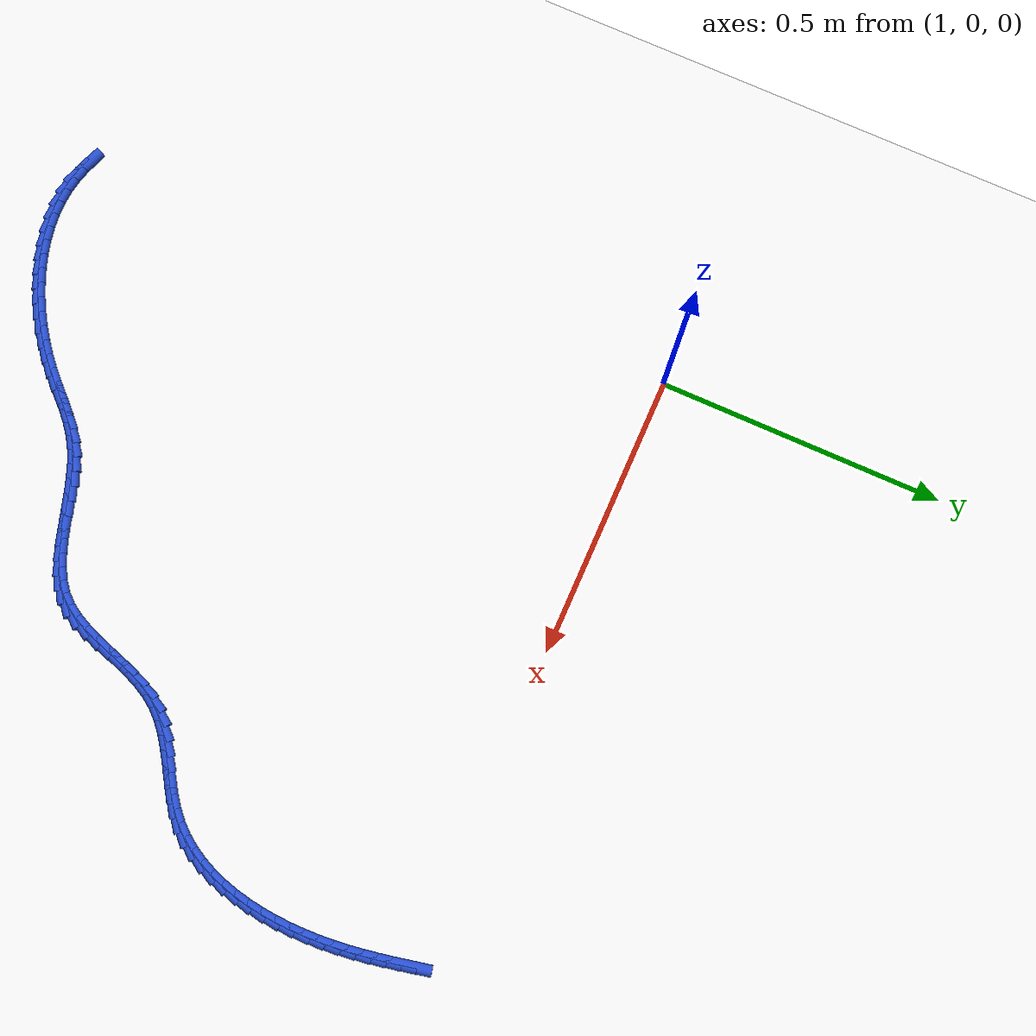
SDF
<sdf version="1.6">
 <world name="default">
  <model name="ground_plane">
   <static>1</static>
   <link name="link">
    <collision name="collision">
     <geometry><plane><normal>0 0 1</normal><size>100 100</size></plane></geometry>
     <surface><friction><ode><mu>100</mu><mu2>50</mu2></ode></friction></surface>
    </collision>
    <visual name="visual">
     <cast_shadows>0</cast_shadows>
     <geometry><plane><normal>0 0 1</normal><size>100 100</size></plane></geometry>
     <material>
      <script><uri>file://media/materials/scripts/gazebo.material</uri><name>Gazebo/WhiteGlow</name></script>
     </material>
    </visual>
   </link>
  </model>
  <model name="line">
   <link name="link_135">
    <pose>2.0529234820076043 -0.0016150680205293515 0.01 0 1.57 -1.3673246584797178</pose>
    <collision name="collision">
     <geometry><cylinder><radius>0.01</radius><length>0.08</length></cylinder></geometry>
    </collision>
    <visual name="visual">
     <material>
      <script><name>Gazebo/Blue</name><uri>file://media/materials/scripts/gazebo.material</uri></script>
     </material>
     <geometry><cylinder><radius>0.01</radius><length>0.08</length></cylinder></geometry>
    </visual>
   </link>
   <link name="link_136">
    <pose>2.0578505331956283 -0.025494895264284473 0.01 0 1.57 -1.3809384411356815</pose>
    <collision name="collision">
     <geometry><cylinder><radius>0.01</radius><length>0.08</length></cylinder></geometry>
    </collision>
    <visual name="visual">
     <material>
      <script><name>Gazebo/Blue</name><uri>file://media/materials/scripts/gazebo.material</uri></script>
     </material>
     <geometry><cylinder><radius>0.01</radius><length>0.08</length></cylinder></geometry>
    </visual>
   </link>
   <link name="link_137">
    <pose>2.0624840304668357 -0.04960603485799999 0.01 0 1.57 -1.4005227668651647</pose>
    <collision name="collision">
     <geometry><cylinder><radius>0.01</radius><length>0.08</length></cylinder></geometry>
    </collision>
    <visual name="visual">
     <material>
      <script><name>Gazebo/Blue</name><uri>file://media/materials/scripts/gazebo.material</uri></script>
     </material>
     <geometry><cylinder><radius>0.01</radius><length>0.08</length></cylinder></geometry>
    </visual>
   </link>
   <link name="link_138">
    <pose>2.0666794723685036 -0.07400686988727408 0.01 0 1.57 -1.4258386888961452</pose>
    <collision name="collision">
     <geometry><cylinder><radius>0.01</radius><length>0.08</length></cylinder></geometry>
    </collision>
    <visual name="visual">
     <material>
      <script><name>Gazebo/Blue</name><uri>file://media/materials/scripts/gazebo.material</uri></script>
     </material>
     <geometry><cylinder><radius>0.01</radius><length>0.08</length></cylinder></geometry>
    </visual>
   </link>
   <link name="link_139">
    <pose>2.0702923574479097 -0.09875578343770189 0.01 0 1.57 -1.456575569134146</pose>
    <collision name="collision">
     <geometry><cylinder><radius>0.01</radius><length>0.08</length></cylinder></geometry>
    </collision>
    <visual name="visual">
     <material>
      <script><name>Gazebo/Blue</name><uri>file://media/materials/scripts/gazebo.material</uri></script>
     </material>
     <geometry><cylinder><radius>0.01</radius><length>0.08</length></cylinder></geometry>
    </visual>
   </link>
   <link name="link_140">
    <pose>2.0731781842523316 -0.1239111585948809 0.01 0 1.57 -1.4921914561104308</pose>
    <collision name="collision">
     <geometry><cylinder><radius>0.01</radius><length>0.08</length></cylinder></geometry>
    </collision>
    <visual name="visual">
     <material>
      <script><name>Gazebo/Blue</name><uri>file://media/materials/scripts/gazebo.material</uri></script>
     </material>
     <geometry><cylinder><radius>0.01</radius><length>0.08</length></cylinder></geometry>
    </visual>
   </link>
   <link name="link_141">
    <pose>2.0751952232248523 -0.14951877042962924 0.01 0 1.57 -1.5308759582454987</pose>
    <collision name="collision">
     <geometry><cylinder><radius>0.01</radius><length>0.08</length></cylinder></geometry>
    </collision>
    <visual name="visual">
     <material>
      <script><name>Gazebo/Blue</name><uri>file://media/materials/scripts/gazebo.material</uri></script>
     </material>
     <geometry><cylinder><radius>0.01</radius><length>0.08</length></cylinder></geometry>
    </visual>
   </link>
   <link name="link_142">
    <pose>2.076232361082001 -0.17548513537710902 0.01 0 1.57 1.5694629504028557</pose>
    <collision name="collision">
     <geometry><cylinder><radius>0.01</radius><length>0.08</length></cylinder></geometry>
    </collision>
    <visual name="visual">
     <material>
      <script><name>Gazebo/Blue</name><uri>file://media/materials/scripts/gazebo.material</uri></script>
     </material>
     <geometry><cylinder><radius>0.01</radius><length>0.08</length></cylinder></geometry>
    </visual>
   </link>
   <link name="link_143">
    <pose>2.0761974997442048 -0.20163027889715962 0.01 0 1.57 1.52497716524298</pose>
    <collision name="collision">
     <geometry><cylinder><radius>0.01</radius><length>0.08</length></cylinder></geometry>
    </collision>
    <visual name="visual">
     <material>
      <script><name>Gazebo/Blue</name><uri>file://media/materials/scripts/gazebo.material</uri></script>
     </material>
     <geometry><cylinder><radius>0.01</radius><length>0.08</length></cylinder></geometry>
    </visual>
   </link>
   <link name="link_144">
    <pose>2.0749988265175134 -0.22777292836830074 0.01 0 1.57 1.476530948751982</pose>
    <collision name="collision">
     <geometry><cylinder><radius>0.01</radius><length>0.08</length></cylinder></geometry>
    </collision>
    <visual name="visual">
     <material>
      <script><name>Gazebo/Blue</name><uri>file://media/materials/scripts/gazebo.material</uri></script>
     </material>
     <geometry><cylinder><radius>0.01</radius><length>0.08</length></cylinder></geometry>
    </visual>
   </link>
   <link name="link_145">
    <pose>2.0725445287079762 -0.25373181116905547 0.01 0 1.57 1.423333579404905</pose>
    <collision name="collision">
     <geometry><cylinder><radius>0.01</radius><length>0.08</length></cylinder></geometry>
    </collision>
    <visual name="visual">
     <material>
      <script><name>Gazebo/Blue</name><uri>file://media/materials/scripts/gazebo.material</uri></script>
     </material>
     <geometry><cylinder><radius>0.01</radius><length>0.08</length></cylinder></geometry>
    </visual>
   </link>
   <link name="link_146">
    <pose>2.068742793621643 -0.27932565467794374 0.01 0 1.57 1.3645306307414187</pose>
    <collision name="collision">
     <geometry><cylinder><radius>0.01</radius><length>0.08</length></cylinder></geometry>
    </collision>
    <visual name="visual">
     <material>
      <script><name>Gazebo/Blue</name><uri>file://media/materials/scripts/gazebo.material</uri></script>
     </material>
     <geometry><cylinder><radius>0.01</radius><length>0.08</length></cylinder></geometry>
    </visual>
   </link>
   <link name="link_147">
    <pose>2.0635018085645633 -0.3043731862734885 0.01 0 1.57 1.2992194690371932</pose>
    <collision name="collision">
     <geometry><cylinder><radius>0.01</radius><length>0.08</length></cylinder></geometry>
    </collision>
    <visual name="visual">
     <material>
      <script><name>Gazebo/Blue</name><uri>file://media/materials/scripts/gazebo.material</uri></script>
     </material>
     <geometry><cylinder><radius>0.01</radius><length>0.08</length></cylinder></geometry>
    </visual>
   </link>
   <link name="link_148">
    <pose>2.0567297608427864 -0.32869313333420974 0.01 0 1.57 1.22649179376259</pose>
    <collision name="collision">
     <geometry><cylinder><radius>0.01</radius><length>0.08</length></cylinder></geometry>
    </collision>
    <visual name="visual">
     <material>
      <script><name>Gazebo/Blue</name><uri>file://media/materials/scripts/gazebo.material</uri></script>
     </material>
     <geometry><cylinder><radius>0.01</radius><length>0.08</length></cylinder></geometry>
    </visual>
   </link>
   <link name="link_149">
    <pose>2.0483348377623622 -0.35210422323863033 0.01 0 1.57 1.1455167119182321</pose>
    <collision name="collision">
     <geometry><cylinder><radius>0.01</radius><length>0.08</length></cylinder></geometry>
    </collision>
    <visual name="visual">
     <material>
      <script><name>Gazebo/Blue</name><uri>file://media/materials/scripts/gazebo.material</uri></script>
     </material>
     <geometry><cylinder><radius>0.01</radius><length>0.08</length></cylinder></geometry>
    </visual>
   </link>
   <link name="link_150">
    <pose>2.038225226629341 -0.3744251833652703 0.01 0 1.57 1.0556778934952047</pose>
    <collision name="collision">
     <geometry><cylinder><radius>0.01</radius><length>0.08</length></cylinder></geometry>
    </collision>
    <visual name="visual">
     <material>
      <script><name>Gazebo/Blue</name><uri>file://media/materials/scripts/gazebo.material</uri></script>
     </material>
     <geometry><cylinder><radius>0.01</radius><length>0.08</length></cylinder></geometry>
    </visual>
   </link>
   <link name="link_151">
    <pose>2.0263091147497705 -0.39547474109265174 0.01 0 1.57 0.9567694726958241</pose>
    <collision name="collision">
     <geometry><cylinder><radius>0.01</radius><length>0.08</length></cylinder></geometry>
    </collision>
    <visual name="visual">
     <material>
      <script><name>Gazebo/Blue</name><uri>file://media/materials/scripts/gazebo.material</uri></script>
     </material>
     <geometry><cylinder><radius>0.01</radius><length>0.08</length></cylinder></geometry>
    </visual>
   </link>
   <link name="link_152">
    <pose>2.012494689429702 -0.415071623799297 0.01 0 1.57 0.8492303155483246</pose>
    <collision name="collision">
     <geometry><cylinder><radius>0.01</radius><length>0.08</length></cylinder></geometry>
    </collision>
    <visual name="visual">
     <material>
      <script><name>Gazebo/Blue</name><uri>file://media/materials/scripts/gazebo.material</uri></script>
     </material>
     <geometry><cylinder><radius>0.01</radius><length>0.08</length></cylinder></geometry>
    </visual>
   </link>
   <link name="link_153">
    <pose>1.9966901379751836 -0.4330345588637259 0.01 0 1.57 0.7361043992434556</pose>
    <collision name="collision">
     <geometry><cylinder><radius>0.01</radius><length>0.08</length></cylinder></geometry>
    </collision>
    <visual name="visual">
     <material>
      <script><name>Gazebo/Blue</name><uri>file://media/materials/scripts/gazebo.material</uri></script>
     </material>
     <geometry><cylinder><radius>0.01</radius><length>0.08</length></cylinder></geometry>
    </visual>
   </link>
   <link name="link_154">
    <pose>1.9788331723716428 -0.44921245769234913 0.01 0 1.57 0.6428761321074841</pose>
    <collision name="collision">
     <geometry><cylinder><radius>0.01</radius><length>0.08</length></cylinder></geometry>
    </collision>
    <visual name="visual">
     <material>
      <script><name>Gazebo/Blue</name><uri>file://media/materials/scripts/gazebo.material</uri></script>
     </material>
     <geometry><cylinder><radius>0.01</radius><length>0.08</length></cylinder></geometry>
    </visual>
   </link>
   <link name="link_155">
    <pose>1.959266551973998 -0.4638683246251703 0.01 0 1.57 0.585912491976759</pose>
    <collision name="collision">
     <geometry><cylinder><radius>0.01</radius><length>0.08</length></cylinder></geometry>
    </collision>
    <visual name="visual">
     <material>
      <script><name>Gazebo/Blue</name><uri>file://media/materials/scripts/gazebo.material</uri></script>
     </material>
     <geometry><cylinder><radius>0.01</radius><length>0.08</length></cylinder></geometry>
    </visual>
   </link>
   <link name="link_156">
    <pose>1.9386270640668832 -0.4775657581972123 0.01 0 1.57 0.5634057011795587</pose>
    <collision name="collision">
     <geometry><cylinder><radius>0.01</radius><length>0.08</length></cylinder></geometry>
    </collision>
    <visual name="visual">
     <material>
      <script><name>Gazebo/Blue</name><uri>file://media/materials/scripts/gazebo.material</uri></script>
     </material>
     <geometry><cylinder><radius>0.01</radius><length>0.08</length></cylinder></geometry>
    </visual>
   </link>
   <link name="link_157">
    <pose>1.9175581000462836 -0.4908751085386126 0.01 0 1.57 0.5742093064977448</pose>
    <collision name="collision">
     <geometry><cylinder><radius>0.01</radius><length>0.08</length></cylinder></geometry>
    </collision>
    <visual name="visual">
     <material>
      <script><name>Gazebo/Blue</name><uri>file://media/materials/scripts/gazebo.material</uri></script>
     </material>
     <geometry><cylinder><radius>0.01</radius><length>0.08</length></cylinder></geometry>
    </visual>
   </link>
   <link name="link_158">
    <pose>1.8967030513081817 -0.5043667257795104 0.01 0 1.57 0.6189281642401576</pose>
    <collision name="collision">
     <geometry><cylinder><radius>0.01</radius><length>0.08</length></cylinder></geometry>
    </collision>
    <visual name="visual">
     <material>
      <script><name>Gazebo/Blue</name><uri>file://media/materials/scripts/gazebo.material</uri></script>
     </material>
     <geometry><cylinder><radius>0.01</radius><length>0.08</length></cylinder></geometry>
    </visual>
   </link>
   <link name="link_159">
    <pose>1.8767053092485624 -0.518610960050043 0.01 0 1.57 0.6995999954480294</pose>
    <collision name="collision">
     <geometry><cylinder><radius>0.01</radius><length>0.08</length></cylinder></geometry>
    </collision>
    <visual name="visual">
     <material>
      <script><name>Gazebo/Blue</name><uri>file://media/materials/scripts/gazebo.material</uri></script>
     </material>
     <geometry><cylinder><radius>0.01</radius><length>0.08</length></cylinder></geometry>
    </visual>
   </link>
   <link name="link_160">
    <pose>1.8582082652634073 -0.534178161480349 0.01 0 1.57 0.8181415716723869</pose>
    <collision name="collision">
     <geometry><cylinder><radius>0.01</radius><length>0.08</length></cylinder></geometry>
    </collision>
    <visual name="visual">
     <material>
      <script><name>Gazebo/Blue</name><uri>file://media/materials/scripts/gazebo.material</uri></script>
     </material>
     <geometry><cylinder><radius>0.01</radius><length>0.08</length></cylinder></geometry>
    </visual>
   </link>
   <link name="link_161">
    <pose>1.8418553107487015 -0.5516386802005677 0.01 0 1.57 0.9643371432308161</pose>
    <collision name="collision">
     <geometry><cylinder><radius>0.01</radius><length>0.08</length></cylinder></geometry>
    </collision>
    <visual name="visual">
     <material>
      <script><name>Gazebo/Blue</name><uri>file://media/materials/scripts/gazebo.material</uri></script>
     </material>
     <geometry><cylinder><radius>0.01</radius><length>0.08</length></cylinder></geometry>
    </visual>
   </link>
   <link name="link_162">
    <pose>1.8281340315995387 -0.5714196271415691 0.01 0 1.57 1.0874435110572933</pose>
    <collision name="collision">
     <geometry><cylinder><radius>0.01</radius><length>0.08</length></cylinder></geometry>
    </collision>
    <visual name="visual">
     <material>
      <script><name>Gazebo/Blue</name><uri>file://media/materials/scripts/gazebo.material</uri></script>
     </material>
     <geometry><cylinder><radius>0.01</radius><length>0.08</length></cylinder></geometry>
    </visual>
   </link>
   <link name="link_163">
    <pose>1.8167072632626697 -0.5931898820219733 0.01 0 1.57 1.172936277470311</pose>
    <collision name="collision">
     <geometry><cylinder><radius>0.01</radius><length>0.08</length></cylinder></geometry>
    </collision>
    <visual name="visual">
     <material>
      <script><name>Gazebo/Blue</name><uri>file://media/materials/scripts/gazebo.material</uri></script>
     </material>
     <geometry><cylinder><radius>0.01</radius><length>0.08</length></cylinder></geometry>
    </visual>
   </link>
   <link name="link_164">
    <pose>1.8069659668193834 -0.6163683778885032 0.01 0 1.57 1.2243911478321612</pose>
    <collision name="collision">
     <geometry><cylinder><radius>0.01</radius><length>0.08</length></cylinder></geometry>
    </collision>
    <visual name="visual">
     <material>
      <script><name>Gazebo/Blue</name><uri>file://media/materials/scripts/gazebo.material</uri></script>
     </material>
     <geometry><cylinder><radius>0.01</radius><length>0.08</length></cylinder></geometry>
    </visual>
   </link>
   <link name="link_165">
    <pose>1.7983009358070732 -0.6403738937570387 0.01 0 1.57 1.2448136403635002</pose>
    <collision name="collision">
     <geometry><cylinder><radius>0.01</radius><length>0.08</length></cylinder></geometry>
    </collision>
    <visual name="visual">
     <material>
      <script><name>Gazebo/Blue</name><uri>file://media/materials/scripts/gazebo.material</uri></script>
     </material>
     <geometry><cylinder><radius>0.01</radius><length>0.08</length></cylinder></geometry>
    </visual>
   </link>
   <link name="link_166">
    <pose>1.7901029637631354 -0.6646252086434583 0.01 0 1.57 1.2352559603557398</pose>
    <collision name="collision">
     <geometry><cylinder><radius>0.01</radius><length>0.08</length></cylinder></geometry>
    </collision>
    <visual name="visual">
     <material>
      <script><name>Gazebo/Blue</name><uri>file://media/materials/scripts/gazebo.material</uri></script>
     </material>
     <geometry><cylinder><radius>0.01</radius><length>0.08</length></cylinder></geometry>
    </visual>
   </link>
   <link name="link_167">
    <pose>1.7817628442249653 -0.6885411015636429 0.01 0 1.57 1.1943531179516584</pose>
    <collision name="collision">
     <geometry><cylinder><radius>0.01</radius><length>0.08</length></cylinder></geometry>
    </collision>
    <visual name="visual">
     <material>
      <script><name>Gazebo/Blue</name><uri>file://media/materials/scripts/gazebo.material</uri></script>
     </material>
     <geometry><cylinder><radius>0.01</radius><length>0.08</length></cylinder></geometry>
    </visual>
   </link>
   <link name="link_168">
    <pose>1.7726713707299586 -0.71154035153347 0.01 0 1.57 1.118322518467083</pose>
    <collision name="collision">
     <geometry><cylinder><radius>0.01</radius><length>0.08</length></cylinder></geometry>
    </collision>
    <visual name="visual">
     <material>
      <script><name>Gazebo/Blue</name><uri>file://media/materials/scripts/gazebo.material</uri></script>
     </material>
     <geometry><cylinder><radius>0.01</radius><length>0.08</length></cylinder></geometry>
    </visual>
   </link>
   <link name="link_169">
    <pose>1.7622193368155097 -0.7330417375688199 0.01 0 1.57 1.0017926432003363</pose>
    <collision name="collision">
     <geometry><cylinder><radius>0.01</radius><length>0.08</length></cylinder></geometry>
    </collision>
    <visual name="visual">
     <material>
      <script><name>Gazebo/Blue</name><uri>file://media/materials/scripts/gazebo.material</uri></script>
     </material>
     <geometry><cylinder><radius>0.01</radius><length>0.08</length></cylinder></geometry>
    </visual>
   </link>
   <link name="link_170">
    <pose>1.7497975360190154 -0.7524640386855715 0.01 0 1.57 0.841590534921002</pose>
    <collision name="collision">
     <geometry><cylinder><radius>0.01</radius><length>0.08</length></cylinder></geometry>
    </collision>
    <visual name="visual">
     <material>
      <script><name>Gazebo/Blue</name><uri>file://media/materials/scripts/gazebo.material</uri></script>
     </material>
     <geometry><cylinder><radius>0.01</radius><length>0.08</length></cylinder></geometry>
    </visual>
   </link>
   <link name="link_171">
    <pose>1.7348094475439464 -0.7692388402384607 0.01 0 1.57 0.6696400207945769</pose>
    <collision name="collision">
     <geometry><cylinder><radius>0.01</radius><length>0.08</length></cylinder></geometry>
    </collision>
    <visual name="visual">
     <material>
      <script><name>Gazebo/Blue</name><uri>file://media/materials/scripts/gazebo.material</uri></script>
     </material>
     <geometry><cylinder><radius>0.01</radius><length>0.08</length></cylinder></geometry>
    </visual>
   </link>
   <link name="link_172">
    <pose>1.7171085911565889 -0.7832520491694267 0.01 0 1.57 0.5294703511370678</pose>
    <collision name="collision">
     <geometry><cylinder><radius>0.01</radius><length>0.08</length></cylinder></geometry>
    </collision>
    <visual name="visual">
     <material>
      <script><name>Gazebo/Blue</name><uri>file://media/materials/scripts/gazebo.material</uri></script>
     </material>
     <geometry><cylinder><radius>0.01</radius><length>0.08</length></cylinder></geometry>
    </visual>
   </link>
   <link name="link_173">
    <pose>1.6971093181417323 -0.7949557388655962 0.01 0 1.57 0.42475879424740265</pose>
    <collision name="collision">
     <geometry><cylinder><radius>0.01</radius><length>0.08</length></cylinder></geometry>
    </collision>
    <visual name="visual">
     <material>
      <script><name>Gazebo/Blue</name><uri>file://media/materials/scripts/gazebo.material</uri></script>
     </material>
     <geometry><cylinder><radius>0.01</radius><length>0.08</length></cylinder></geometry>
    </visual>
   </link>
   <link name="link_174">
    <pose>1.6752611606286394 -0.8048374982174137 0.01 0 1.57 0.352329159155542</pose>
    <collision name="collision">
     <geometry><cylinder><radius>0.01</radius><length>0.08</length></cylinder></geometry>
    </collision>
    <visual name="visual">
     <material>
      <script><name>Gazebo/Blue</name><uri>file://media/materials/scripts/gazebo.material</uri></script>
     </material>
     <geometry><cylinder><radius>0.01</radius><length>0.08</length></cylinder></geometry>
    </visual>
   </link>
   <link name="link_175">
    <pose>1.6520136507465761 -0.8133849161153233 0.01 0 1.57 0.30810962833693056</pose>
    <collision name="collision">
     <geometry><cylinder><radius>0.01</radius><length>0.08</length></cylinder></geometry>
    </collision>
    <visual name="visual">
     <material>
      <script><name>Gazebo/Blue</name><uri>file://media/materials/scripts/gazebo.material</uri></script>
     </material>
     <geometry><cylinder><radius>0.01</radius><length>0.08</length></cylinder></geometry>
    </visual>
   </link>
   <link name="link_176">
    <pose>1.6278163206248064 -0.8210855814497698 0.01 0 1.57 0.28893696207708364</pose>
    <collision name="collision">
     <geometry><cylinder><radius>0.01</radius><length>0.08</length></cylinder></geometry>
    </collision>
    <visual name="visual">
     <material>
      <script><name>Gazebo/Blue</name><uri>file://media/materials/scripts/gazebo.material</uri></script>
     </material>
     <geometry><cylinder><radius>0.01</radius><length>0.08</length></cylinder></geometry>
    </visual>
   </link>
   <link name="link_177">
    <pose>1.6031187023925944 -0.828427083111197 0.01 0 1.57 0.2931394792457987</pose>
    <collision name="collision">
     <geometry><cylinder><radius>0.01</radius><length>0.08</length></cylinder></geometry>
    </collision>
    <visual name="visual">
     <material>
      <script><name>Gazebo/Blue</name><uri>file://media/materials/scripts/gazebo.material</uri></script>
     </material>
     <geometry><cylinder><radius>0.01</radius><length>0.08</length></cylinder></geometry>
    </visual>
   </link>
   <link name="link_178">
    <pose>1.5783703281792045 -0.8358970099900496 0.01 0 1.57 0.3206194104323628</pose>
    <collision name="collision">
     <geometry><cylinder><radius>0.01</radius><length>0.08</length></cylinder></geometry>
    </collision>
    <visual name="visual">
     <material>
      <script><name>Gazebo/Blue</name><uri>file://media/materials/scripts/gazebo.material</uri></script>
     </material>
     <geometry><cylinder><radius>0.01</radius><length>0.08</length></cylinder></geometry>
    </visual>
   </link>
   <link name="link_179">
    <pose>1.554020730113902 -0.8439829509767715 0.01 0 1.57 0.37274367854860385</pose>
    <collision name="collision">
     <geometry><cylinder><radius>0.01</radius><length>0.08</length></cylinder></geometry>
    </collision>
    <visual name="visual">
     <material>
      <script><name>Gazebo/Blue</name><uri>file://media/materials/scripts/gazebo.material</uri></script>
     </material>
     <geometry><cylinder><radius>0.01</radius><length>0.08</length></cylinder></geometry>
    </visual>
   </link>
   <link name="link_180">
    <pose>1.5305194403259494 -0.8531724949618074 0.01 0 1.57 0.4520154982346555</pose>
    <collision name="collision">
     <geometry><cylinder><radius>0.01</radius><length>0.08</length></cylinder></geometry>
    </collision>
    <visual name="visual">
     <material>
      <script><name>Gazebo/Blue</name><uri>file://media/materials/scripts/gazebo.material</uri></script>
     </material>
     <geometry><cylinder><radius>0.01</radius><length>0.08</length></cylinder></geometry>
    </visual>
   </link>
   <link name="link_181">
    <pose>1.5083159909446127 -0.8639532308356008 0.01 0 1.57 0.5588624319920703</pose>
    <collision name="collision">
     <geometry><cylinder><radius>0.01</radius><length>0.08</length></cylinder></geometry>
    </collision>
    <visual name="visual">
     <material>
      <script><name>Gazebo/Blue</name><uri>file://media/materials/scripts/gazebo.material</uri></script>
     </material>
     <geometry><cylinder><radius>0.01</radius><length>0.08</length></cylinder></geometry>
    </visual>
   </link>
   <link name="link_182">
    <pose>1.4878189827163026 -0.8767713619973968 0.01 0 1.57 0.6618976207691253</pose>
    <collision name="collision">
     <geometry><cylinder><radius>0.01</radius><length>0.08</length></cylinder></geometry>
    </collision>
    <visual name="visual">
     <material>
      <script><name>Gazebo/Blue</name><uri>file://media/materials/scripts/gazebo.material</uri></script>
     </material>
     <geometry><cylinder><radius>0.01</radius><length>0.08</length></cylinder></geometry>
    </visual>
   </link>
   <link name="link_183">
    <pose>1.4688899289751338 -0.891519934838078 0.01 0 1.57 0.7351891710706323</pose>
    <collision name="collision">
     <geometry><cylinder><radius>0.01</radius><length>0.08</length></cylinder></geometry>
    </collision>
    <visual name="visual">
     <material>
      <script><name>Gazebo/Blue</name><uri>file://media/materials/scripts/gazebo.material</uri></script>
     </material>
     <geometry><cylinder><radius>0.01</radius><length>0.08</length></cylinder></geometry>
    </visual>
   </link>
   <link name="link_184">
    <pose>1.4510003068719401 -0.9076976323553126 0.01 0 1.57 0.7769863733979949</pose>
    <collision name="collision">
     <geometry><cylinder><radius>0.01</radius><length>0.08</length></cylinder></geometry>
    </collision>
    <visual name="visual">
     <material>
      <script><name>Gazebo/Blue</name><uri>file://media/materials/scripts/gazebo.material</uri></script>
     </material>
     <geometry><cylinder><radius>0.01</radius><length>0.08</length></cylinder></geometry>
    </visual>
   </link>
   <link name="link_185">
    <pose>1.433613204125139 -0.9247946550387983 0.01 0 1.57 0.7878332410475453</pose>
    <collision name="collision">
     <geometry><cylinder><radius>0.01</radius><length>0.08</length></cylinder></geometry>
    </collision>
    <visual name="visual">
     <material>
      <script><name>Gazebo/Blue</name><uri>file://media/materials/scripts/gazebo.material</uri></script>
     </material>
     <geometry><cylinder><radius>0.01</radius><length>0.08</length></cylinder></geometry>
    </visual>
   </link>
   <link name="link_186">
    <pose>1.4161917084531497 -0.9423012033782311 0.01 0 1.57 0.7688307044092931</pose>
    <collision name="collision">
     <geometry><cylinder><radius>0.01</radius><length>0.08</length></cylinder></geometry>
    </collision>
    <visual name="visual">
     <material>
      <script><name>Gazebo/Blue</name><uri>file://media/materials/scripts/gazebo.material</uri></script>
     </material>
     <geometry><cylinder><radius>0.01</radius><length>0.08</length></cylinder></geometry>
    </visual>
   </link>
   <link name="link_187">
    <pose>1.3981989075743897 -0.9597074778633089 0.01 0 1.57 0.7232978568520219</pose>
    <collision name="collision">
     <geometry><cylinder><radius>0.01</radius><length>0.08</length></cylinder></geometry>
    </collision>
    <visual name="visual">
     <material>
      <script><name>Gazebo/Blue</name><uri>file://media/materials/scripts/gazebo.material</uri></script>
     </material>
     <geometry><cylinder><radius>0.01</radius><length>0.08</length></cylinder></geometry>
    </visual>
   </link>
   <link name="link_188">
    <pose>1.379144970853221 -0.9765305715505217 0.01 0 1.57 0.6697378480420607</pose>
    <collision name="collision">
     <geometry><cylinder><radius>0.01</radius><length>0.08</length></cylinder></geometry>
    </collision>
    <visual name="visual">
     <material>
      <script><name>Gazebo/Blue</name><uri>file://media/materials/scripts/gazebo.material</uri></script>
     </material>
     <geometry><cylinder><radius>0.01</radius><length>0.08</length></cylinder></geometry>
    </visual>
   </link>
   <link name="link_189">
    <pose>1.3589498381734293 -0.9925216343319578 0.01 0 1.57 0.6166170541940905</pose>
    <collision name="collision">
     <geometry><cylinder><radius>0.01</radius><length>0.08</length></cylinder></geometry>
    </collision>
    <visual name="visual">
     <material>
      <script><name>Gazebo/Blue</name><uri>file://media/materials/scripts/gazebo.material</uri></script>
     </material>
     <geometry><cylinder><radius>0.01</radius><length>0.08</length></cylinder></geometry>
    </visual>
   </link>
   <link name="link_190">
    <pose>1.3377444316345861 -1.0075523270380269 0.01 0 1.57 0.5631806816668877</pose>
    <collision name="collision">
     <geometry><cylinder><radius>0.01</radius><length>0.08</length></cylinder></geometry>
    </collision>
    <visual name="visual">
     <material>
      <script><name>Gazebo/Blue</name><uri>file://media/materials/scripts/gazebo.material</uri></script>
     </material>
     <geometry><cylinder><radius>0.01</radius><length>0.08</length></cylinder></geometry>
    </visual>
   </link>
   <link name="link_191">
    <pose>1.3156614168116192 -1.0214953063548848 0.01 0 1.57 0.508627783296207</pose>
    <collision name="collision">
     <geometry><cylinder><radius>0.01</radius><length>0.08</length></cylinder></geometry>
    </collision>
    <visual name="visual">
     <material>
      <script><name>Gazebo/Blue</name><uri>file://media/materials/scripts/gazebo.material</uri></script>
     </material>
     <geometry><cylinder><radius>0.01</radius><length>0.08</length></cylinder></geometry>
    </visual>
   </link>
   <link name="link_192">
    <pose>1.2928334592794564 -1.0342232289686832 0.01 0 1.57 0.4521630357667688</pose>
    <collision name="collision">
     <geometry><cylinder><radius>0.01</radius><length>0.08</length></cylinder></geometry>
    </collision>
    <visual name="visual">
     <material>
      <script><name>Gazebo/Blue</name><uri>file://media/materials/scripts/gazebo.material</uri></script>
     </material>
     <geometry><cylinder><radius>0.01</radius><length>0.08</length></cylinder></geometry>
    </visual>
   </link>
   <link name="link_193">
    <pose>1.269393224613027 -1.0456087515655783 0.01 0 1.57 0.3929793301130365</pose>
    <collision name="collision">
     <geometry><cylinder><radius>0.01</radius><length>0.08</length></cylinder></geometry>
    </collision>
    <visual name="visual">
     <material>
      <script><name>Gazebo/Blue</name><uri>file://media/materials/scripts/gazebo.material</uri></script>
     </material>
     <geometry><cylinder><radius>0.01</radius><length>0.08</length></cylinder></geometry>
    </visual>
   </link>
   <link name="link_194">
    <pose>1.245473378387257 -1.055524530831723 0.01 0 1.57 0.33024755851837223</pose>
    <collision name="collision">
     <geometry><cylinder><radius>0.01</radius><length>0.08</length></cylinder></geometry>
    </collision>
    <visual name="visual">
     <material>
      <script><name>Gazebo/Blue</name><uri>file://media/materials/scripts/gazebo.material</uri></script>
     </material>
     <geometry><cylinder><radius>0.01</radius><length>0.08</length></cylinder></geometry>
    </visual>
   </link>
   <link name="link_195">
    <pose>1.221206586177076 -1.0638432234532706 0.01 0 1.57 0.2631167835949204</pose>
    <collision name="collision">
     <geometry><cylinder><radius>0.01</radius><length>0.08</length></cylinder></geometry>
    </collision>
    <visual name="visual">
     <material>
      <script><name>Gazebo/Blue</name><uri>file://media/materials/scripts/gazebo.material</uri></script>
     </material>
     <geometry><cylinder><radius>0.01</radius><length>0.08</length></cylinder></geometry>
    </visual>
   </link>
   <link name="link_196">
    <pose>1.1967255135574106 -1.0704374861163763 0.01 0 1.57 0.19073002943912615</pose>
    <collision name="collision">
     <geometry><cylinder><radius>0.01</radius><length>0.08</length></cylinder></geometry>
    </collision>
    <visual name="visual">
     <material>
      <script><name>Gazebo/Blue</name><uri>file://media/materials/scripts/gazebo.material</uri></script>
     </material>
     <geometry><cylinder><radius>0.01</radius><length>0.08</length></cylinder></geometry>
    </visual>
   </link>
   <link name="link_197">
    <pose>1.1721628261031902 -1.0751799755071931 0.01 0 1.57 0.11226317213429746</pose>
    <collision name="collision">
     <geometry><cylinder><radius>0.01</radius><length>0.08</length></cylinder></geometry>
    </collision>
    <visual name="visual">
     <material>
      <script><name>Gazebo/Blue</name><uri>file://media/materials/scripts/gazebo.material</uri></script>
     </material>
     <geometry><cylinder><radius>0.01</radius><length>0.08</length></cylinder></geometry>
    </visual>
   </link>
   <link name="link_198">
    <pose>1.1476511893893415 -1.0779433483118754 0.01 0 1.57 0.026995867514108523</pose>
    <collision name="collision">
     <geometry><cylinder><radius>0.01</radius><length>0.08</length></cylinder></geometry>
    </collision>
    <visual name="visual">
     <material>
      <script><name>Gazebo/Blue</name><uri>file://media/materials/scripts/gazebo.material</uri></script>
     </material>
     <geometry><cylinder><radius>0.01</radius><length>0.08</length></cylinder></geometry>
    </visual>
   </link>
   <link name="link_199">
    <pose>1.1233232689907942 -1.0786002612165775 0.01 0 1.57 -0.06557802200350121</pose>
    <collision name="collision">
     <geometry><cylinder><radius>0.01</radius><length>0.08</length></cylinder></geometry>
    </collision>
    <visual name="visual">
     <material>
      <script><name>Gazebo/Blue</name><uri>file://media/materials/scripts/gazebo.material</uri></script>
     </material>
     <geometry><cylinder><radius>0.01</radius><length>0.08</length></cylinder></geometry>
    </visual>
   </link>
   <link name="link_200">
    <pose>1.0993117304824742 -1.0770233709074521 0.01 0 1.57 -0.16560101120985657</pose>
    <collision name="collision">
     <geometry><cylinder><radius>0.01</radius><length>0.08</length></cylinder></geometry>
    </collision>
    <visual name="visual">
     <material>
      <script><name>Gazebo/Blue</name><uri>file://media/materials/scripts/gazebo.material</uri></script>
     </material>
     <geometry><cylinder><radius>0.01</radius><length>0.08</length></cylinder></geometry>
    </visual>
   </link>
   <link name="link_201">
    <pose>1.0757492394393113 -1.0730853340706545 0.01 0 1.57 -0.26968884649065306</pose>
    <collision name="collision">
     <geometry><cylinder><radius>0.01</radius><length>0.08</length></cylinder></geometry>
    </collision>
    <visual name="visual">
     <material>
      <script><name>Gazebo/Blue</name><uri>file://media/materials/scripts/gazebo.material</uri></script>
     </material>
     <geometry><cylinder><radius>0.01</radius><length>0.08</length></cylinder></geometry>
    </visual>
   </link>
   <link name="link_202">
    <pose>1.052740940839379 -1.0667253070426377 0.01 0 1.57 -0.3579194761208088</pose>
    <collision name="collision">
     <geometry><cylinder><radius>0.01</radius><length>0.08</length></cylinder></geometry>
    </collision>
    <visual name="visual">
     <material>
      <script><name>Gazebo/Blue</name><uri>file://media/materials/scripts/gazebo.material</uri></script>
     </material>
     <geometry><cylinder><radius>0.01</radius><length>0.08</length></cylinder></geometry>
    </visual>
   </link>
  </model>
 </world>
</sdf>
